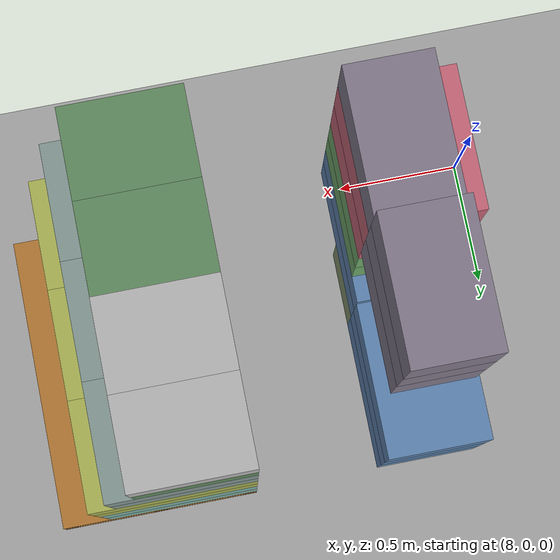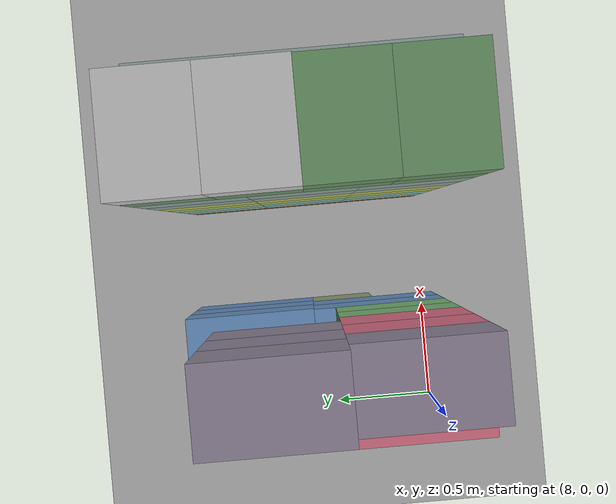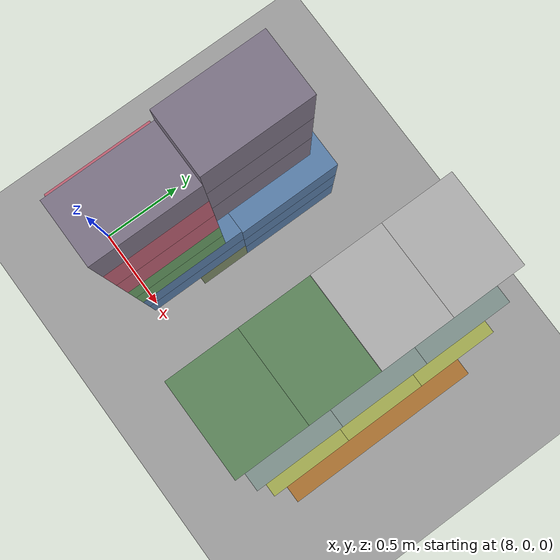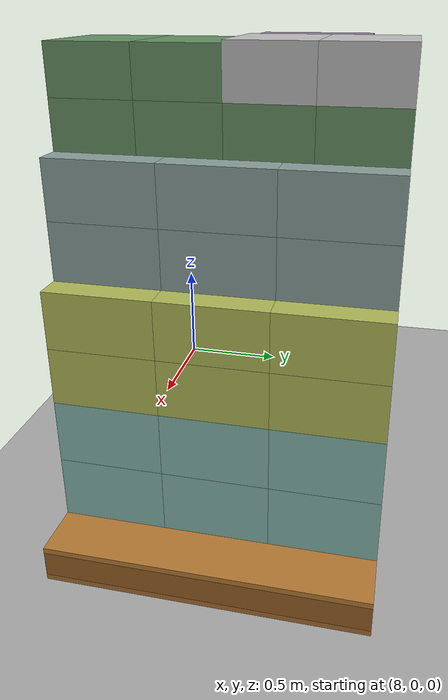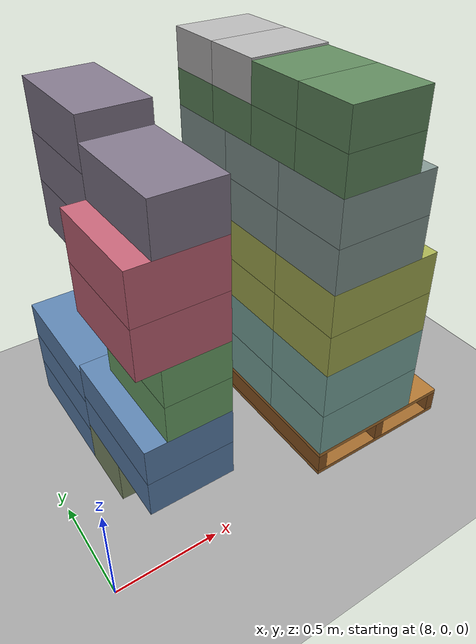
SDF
<sdf version="1.10">
 <world name="pallet_towers">
  <model name="ground_plane">
   <static>true</static>
   <link name="link">
    <collision name="collision">
     <geometry><plane><normal>0 0 1</normal><size>30 30</size></plane></geometry>
     <surface>
      <friction><ode><mu>0.55</mu><mu2>0.55</mu2></ode></friction>
      <bounce><restitution_coefficient>0</restitution_coefficient><threshold>100000</threshold></bounce>
      <contact><ode><kp>1000000</kp><kd>100</kd><max_vel>1</max_vel><min_depth>0.0005</min_depth></ode></contact>
     </surface>
    </collision>
    <visual name="visual">
     <geometry><plane><normal>0 0 1</normal><size>30 30</size></plane></geometry>
     <material><ambient>0.65 0.65 0.65 1</ambient><diffuse>0.65 0.65 0.65 1</diffuse></material>
    </visual>
   </link>
  </model>
  <model name="box_p07_0004_FRZVEG_005_FRZVEG">
   <static>false</static>
   <pose>8.4 0.45 0.256 0 0 0</pose>
   <link name="body">
    <inertial>
     <mass>7.5</mass>
     <inertia><ixx>0.0865</ixx><ixy>0</ixy><ixz>0</ixz><iyy>0.13025</iyy><iyz>0</iyz><izz>0.15625</izz></inertia>
    </inertial>
    <collision name="collision">
     <geometry><box><size>0.4 0.3 0.22</size></box></geometry>
     <surface>
      <friction><ode><mu>0.55</mu><mu2>0.55</mu2></ode></friction>
      <bounce><restitution_coefficient>0</restitution_coefficient><threshold>100000</threshold></bounce>
      <contact><ode><kp>1000000</kp><kd>100</kd><max_vel>1</max_vel><min_depth>0.0005</min_depth></ode></contact>
     </surface>
    </collision>
    <visual name="visual">
     <geometry><box><size>0.4 0.3 0.22</size></box></geometry>
     <material>
      <ambient>0.525490196 0.584313725 0.431372549 1</ambient>
      <diffuse>0.525490196 0.584313725 0.431372549 1</diffuse>
      <specular>0.05 0.05 0.05 1</specular>
     </material>
    </visual>
   </link>
  </model>
  <model name="box_p07_0006_PIZZA_001_PIZZA">
   <static>false</static>
   <pose>8.4 0.9 0.236 0 0 0</pose>
   <link name="body">
    <inertial>
     <mass>6</mass>
     <inertia><ixx>0.1962</ixx><ixy>0</ixy><ixz>0</ixz><iyy>0.0962</iyy><iyz>0</iyz><izz>0.26</izz></inertia>
    </inertial>
    <collision name="collision">
     <geometry><box><size>0.4 0.6 0.18</size></box></geometry>
     <surface>
      <friction><ode><mu>0.55</mu><mu2>0.55</mu2></ode></friction>
      <bounce><restitution_coefficient>0</restitution_coefficient><threshold>100000</threshold></bounce>
      <contact><ode><kp>1000000</kp><kd>100</kd><max_vel>1</max_vel><min_depth>0.0005</min_depth></ode></contact>
     </surface>
    </collision>
    <visual name="visual">
     <geometry><box><size>0.4 0.6 0.18</size></box></geometry>
     <material>
      <ambient>0.37254902 0.525490196 0.701960784 1</ambient>
      <diffuse>0.37254902 0.525490196 0.701960784 1</diffuse>
      <specular>0.05 0.05 0.05 1</specular>
     </material>
    </visual>
   </link>
  </model>
  <model name="box_p07_0007_PIZZA_002_PIZZA">
   <static>false</static>
   <pose>8.4 0.9 0.416 0 0 0</pose>
   <link name="body">
    <inertial>
     <mass>6</mass>
     <inertia><ixx>0.1962</ixx><ixy>0</ixy><ixz>0</ixz><iyy>0.0962</iyy><iyz>0</iyz><izz>0.26</izz></inertia>
    </inertial>
    <collision name="collision">
     <geometry><box><size>0.4 0.6 0.18</size></box></geometry>
     <surface>
      <friction><ode><mu>0.55</mu><mu2>0.55</mu2></ode></friction>
      <bounce><restitution_coefficient>0</restitution_coefficient><threshold>100000</threshold></bounce>
      <contact><ode><kp>1000000</kp><kd>100</kd><max_vel>1</max_vel><min_depth>0.0005</min_depth></ode></contact>
     </surface>
    </collision>
    <visual name="visual">
     <geometry><box><size>0.4 0.6 0.18</size></box></geometry>
     <material>
      <ambient>0.37254902 0.525490196 0.701960784 1</ambient>
      <diffuse>0.37254902 0.525490196 0.701960784 1</diffuse>
      <specular>0.05 0.05 0.05 1</specular>
     </material>
    </visual>
   </link>
  </model>
  <model name="box_p07_0008_PIZZA_003_PIZZA">
   <static>false</static>
   <pose>8.4 0.3 0.456 0 0 0</pose>
   <link name="body">
    <inertial>
     <mass>6</mass>
     <inertia><ixx>0.1962</ixx><ixy>0</ixy><ixz>0</ixz><iyy>0.0962</iyy><iyz>0</iyz><izz>0.26</izz></inertia>
    </inertial>
    <collision name="collision">
     <geometry><box><size>0.4 0.6 0.18</size></box></geometry>
     <surface>
      <friction><ode><mu>0.55</mu><mu2>0.55</mu2></ode></friction>
      <bounce><restitution_coefficient>0</restitution_coefficient><threshold>100000</threshold></bounce>
      <contact><ode><kp>1000000</kp><kd>100</kd><max_vel>1</max_vel><min_depth>0.0005</min_depth></ode></contact>
     </surface>
    </collision>
    <visual name="visual">
     <geometry><box><size>0.4 0.6 0.18</size></box></geometry>
     <material>
      <ambient>0.37254902 0.525490196 0.701960784 1</ambient>
      <diffuse>0.37254902 0.525490196 0.701960784 1</diffuse>
      <specular>0.05 0.05 0.05 1</specular>
     </material>
    </visual>
   </link>
  </model>
  <model name="box_p07_0009_PIZZA_004_PIZZA">
   <static>false</static>
   <pose>8.4 0.9 0.596 0 0 0</pose>
   <link name="body">
    <inertial>
     <mass>6</mass>
     <inertia><ixx>0.1962</ixx><ixy>0</ixy><ixz>0</ixz><iyy>0.0962</iyy><iyz>0</iyz><izz>0.26</izz></inertia>
    </inertial>
    <collision name="collision">
     <geometry><box><size>0.4 0.6 0.18</size></box></geometry>
     <surface>
      <friction><ode><mu>0.55</mu><mu2>0.55</mu2></ode></friction>
      <bounce><restitution_coefficient>0</restitution_coefficient><threshold>100000</threshold></bounce>
      <contact><ode><kp>1000000</kp><kd>100</kd><max_vel>1</max_vel><min_depth>0.0005</min_depth></ode></contact>
     </surface>
    </collision>
    <visual name="visual">
     <geometry><box><size>0.4 0.6 0.18</size></box></geometry>
     <material>
      <ambient>0.37254902 0.525490196 0.701960784 1</ambient>
      <diffuse>0.37254902 0.525490196 0.701960784 1</diffuse>
      <specular>0.05 0.05 0.05 1</specular>
     </material>
    </visual>
   </link>
  </model>
  <model name="box_p07_0011_PIZZA_006_PIZZA">
   <static>false</static>
   <pose>8.4 0.3 0.636 0 0 0</pose>
   <link name="body">
    <inertial>
     <mass>6</mass>
     <inertia><ixx>0.1962</ixx><ixy>0</ixy><ixz>0</ixz><iyy>0.0962</iyy><iyz>0</iyz><izz>0.26</izz></inertia>
    </inertial>
    <collision name="collision">
     <geometry><box><size>0.4 0.6 0.18</size></box></geometry>
     <surface>
      <friction><ode><mu>0.55</mu><mu2>0.55</mu2></ode></friction>
      <bounce><restitution_coefficient>0</restitution_coefficient><threshold>100000</threshold></bounce>
      <contact><ode><kp>1000000</kp><kd>100</kd><max_vel>1</max_vel><min_depth>0.0005</min_depth></ode></contact>
     </surface>
    </collision>
    <visual name="visual">
     <geometry><box><size>0.4 0.6 0.18</size></box></geometry>
     <material>
      <ambient>0.37254902 0.525490196 0.701960784 1</ambient>
      <diffuse>0.37254902 0.525490196 0.701960784 1</diffuse>
      <specular>0.05 0.05 0.05 1</specular>
     </material>
    </visual>
   </link>
  </model>
  <model name="box_p07_0021_CHICKEN_004_CHICKEN">
   <static>false</static>
   <pose>8.45 0.25 0.816 0 0 0</pose>
   <link name="body">
    <inertial>
     <mass>10</mass>
     <inertia>
      <ixx>0.235333333</ixx>
      <ixy>0</ixy>
      <ixz>0</ixz>
      <iyy>0.102</iyy>
      <iyz>0</iyz>
      <izz>0.283333333</izz>
     </inertia>
    </inertial>
    <collision name="collision">
     <geometry><box><size>0.3 0.5 0.18</size></box></geometry>
     <surface>
      <friction><ode><mu>0.55</mu><mu2>0.55</mu2></ode></friction>
      <bounce><restitution_coefficient>0</restitution_coefficient><threshold>100000</threshold></bounce>
      <contact><ode><kp>1000000</kp><kd>100</kd><max_vel>1</max_vel><min_depth>0.0005</min_depth></ode></contact>
     </surface>
    </collision>
    <visual name="visual">
     <geometry><box><size>0.3 0.5 0.18</size></box></geometry>
     <material>
      <ambient>0.439215686 0.666666667 0.423529412 1</ambient>
      <diffuse>0.439215686 0.666666667 0.423529412 1</diffuse>
      <specular>0.05 0.05 0.05 1</specular>
     </material>
    </visual>
   </link>
  </model>
  <model name="box_p07_0023_CHICKEN_006_CHICKEN">
   <static>false</static>
   <pose>8.45 0.25 0.996 0 0 0</pose>
   <link name="body">
    <inertial>
     <mass>10</mass>
     <inertia>
      <ixx>0.235333333</ixx>
      <ixy>0</ixy>
      <ixz>0</ixz>
      <iyy>0.102</iyy>
      <iyz>0</iyz>
      <izz>0.283333333</izz>
     </inertia>
    </inertial>
    <collision name="collision">
     <geometry><box><size>0.3 0.5 0.18</size></box></geometry>
     <surface>
      <friction><ode><mu>0.55</mu><mu2>0.55</mu2></ode></friction>
      <bounce><restitution_coefficient>0</restitution_coefficient><threshold>100000</threshold></bounce>
      <contact><ode><kp>1000000</kp><kd>100</kd><max_vel>1</max_vel><min_depth>0.0005</min_depth></ode></contact>
     </surface>
    </collision>
    <visual name="visual">
     <geometry><box><size>0.3 0.5 0.18</size></box></geometry>
     <material>
      <ambient>0.439215686 0.666666667 0.423529412 1</ambient>
      <diffuse>0.439215686 0.666666667 0.423529412 1</diffuse>
      <specular>0.05 0.05 0.05 1</specular>
     </material>
    </visual>
   </link>
  </model>
  <model name="box_p07_0031_CARROT_002_CARROT">
   <static>false</static>
   <pose>8.4 0.25 1.201 0 0 0</pose>
   <link name="body">
    <inertial>
     <mass>12</mass>
     <inertia><ixx>0.3029</ixx><ixy>0</ixy><ixz>0</ixz><iyy>0.2129</iyy><iyz>0</iyz><izz>0.41</izz></inertia>
    </inertial>
    <collision name="collision">
     <geometry><box><size>0.4 0.5 0.23</size></box></geometry>
     <surface>
      <friction><ode><mu>0.55</mu><mu2>0.55</mu2></ode></friction>
      <bounce><restitution_coefficient>0</restitution_coefficient><threshold>100000</threshold></bounce>
      <contact><ode><kp>1000000</kp><kd>100</kd><max_vel>1</max_vel><min_depth>0.0005</min_depth></ode></contact>
     </surface>
    </collision>
    <visual name="visual">
     <geometry><box><size>0.4 0.5 0.23</size></box></geometry>
     <material>
      <ambient>0.784313725 0.4 0.474509804 1</ambient>
      <diffuse>0.784313725 0.4 0.474509804 1</diffuse>
      <specular>0.05 0.05 0.05 1</specular>
     </material>
    </visual>
   </link>
  </model>
  <model name="box_p07_0033_CARROT_004_CARROT">
   <static>false</static>
   <pose>8.4 0.25 1.431 0 0 0</pose>
   <link name="body">
    <inertial>
     <mass>12</mass>
     <inertia><ixx>0.3029</ixx><ixy>0</ixy><ixz>0</ixz><iyy>0.2129</iyy><iyz>0</iyz><izz>0.41</izz></inertia>
    </inertial>
    <collision name="collision">
     <geometry><box><size>0.4 0.5 0.23</size></box></geometry>
     <surface>
      <friction><ode><mu>0.55</mu><mu2>0.55</mu2></ode></friction>
      <bounce><restitution_coefficient>0</restitution_coefficient><threshold>100000</threshold></bounce>
      <contact><ode><kp>1000000</kp><kd>100</kd><max_vel>1</max_vel><min_depth>0.0005</min_depth></ode></contact>
     </surface>
    </collision>
    <visual name="visual">
     <geometry><box><size>0.4 0.5 0.23</size></box></geometry>
     <material>
      <ambient>0.784313725 0.4 0.474509804 1</ambient>
      <diffuse>0.784313725 0.4 0.474509804 1</diffuse>
      <specular>0.05 0.05 0.05 1</specular>
     </material>
    </visual>
   </link>
  </model>
  <model name="box_p07_0036_CUCUMBER_001_CUCUMBER">
   <static>false</static>
   <pose>8.45 0.75 1.316 0 0 0</pose>
   <link name="body">
    <inertial>
     <mass>8</mass>
     <inertia>
      <ixx>0.198933333</ixx>
      <ixy>0</ixy>
      <ixz>0</ixz>
      <iyy>0.0922666667</iyy>
      <iyz>0</iyz>
      <izz>0.226666667</izz>
     </inertia>
    </inertial>
    <collision name="collision">
     <geometry><box><size>0.3 0.5 0.22</size></box></geometry>
     <surface>
      <friction><ode><mu>0.55</mu><mu2>0.55</mu2></ode></friction>
      <bounce><restitution_coefficient>0</restitution_coefficient><threshold>100000</threshold></bounce>
      <contact><ode><kp>1000000</kp><kd>100</kd><max_vel>1</max_vel><min_depth>0.0005</min_depth></ode></contact>
     </surface>
    </collision>
    <visual name="visual">
     <geometry><box><size>0.3 0.5 0.22</size></box></geometry>
     <material>
      <ambient>0.517647059 0.478431373 0.552941176 1</ambient>
      <diffuse>0.517647059 0.478431373 0.552941176 1</diffuse>
      <specular>0.05 0.05 0.05 1</specular>
     </material>
    </visual>
   </link>
  </model>
  <model name="box_p07_0037_CUCUMBER_002_CUCUMBER">
   <static>false</static>
   <pose>8.45 0.75 1.536 0 0 0</pose>
   <link name="body">
    <inertial>
     <mass>8</mass>
     <inertia>
      <ixx>0.198933333</ixx>
      <ixy>0</ixy>
      <ixz>0</ixz>
      <iyy>0.0922666667</iyy>
      <iyz>0</iyz>
      <izz>0.226666667</izz>
     </inertia>
    </inertial>
    <collision name="collision">
     <geometry><box><size>0.3 0.5 0.22</size></box></geometry>
     <surface>
      <friction><ode><mu>0.55</mu><mu2>0.55</mu2></ode></friction>
      <bounce><restitution_coefficient>0</restitution_coefficient><threshold>100000</threshold></bounce>
      <contact><ode><kp>1000000</kp><kd>100</kd><max_vel>1</max_vel><min_depth>0.0005</min_depth></ode></contact>
     </surface>
    </collision>
    <visual name="visual">
     <geometry><box><size>0.3 0.5 0.22</size></box></geometry>
     <material>
      <ambient>0.517647059 0.478431373 0.552941176 1</ambient>
      <diffuse>0.517647059 0.478431373 0.552941176 1</diffuse>
      <specular>0.05 0.05 0.05 1</specular>
     </material>
    </visual>
   </link>
  </model>
  <model name="box_p07_0038_CUCUMBER_003_CUCUMBER">
   <static>false</static>
   <pose>8.45 0.25 1.656 0 0 0</pose>
   <link name="body">
    <inertial>
     <mass>8</mass>
     <inertia>
      <ixx>0.198933333</ixx>
      <ixy>0</ixy>
      <ixz>0</ixz>
      <iyy>0.0922666667</iyy>
      <iyz>0</iyz>
      <izz>0.226666667</izz>
     </inertia>
    </inertial>
    <collision name="collision">
     <geometry><box><size>0.3 0.5 0.22</size></box></geometry>
     <surface>
      <friction><ode><mu>0.55</mu><mu2>0.55</mu2></ode></friction>
      <bounce><restitution_coefficient>0</restitution_coefficient><threshold>100000</threshold></bounce>
      <contact><ode><kp>1000000</kp><kd>100</kd><max_vel>1</max_vel><min_depth>0.0005</min_depth></ode></contact>
     </surface>
    </collision>
    <visual name="visual">
     <geometry><box><size>0.3 0.5 0.22</size></box></geometry>
     <material>
      <ambient>0.517647059 0.478431373 0.552941176 1</ambient>
      <diffuse>0.517647059 0.478431373 0.552941176 1</diffuse>
      <specular>0.05 0.05 0.05 1</specular>
     </material>
    </visual>
   </link>
  </model>
  <model name="box_p07_0040_CUCUMBER_005_CUCUMBER">
   <static>false</static>
   <pose>8.45 0.75 1.756 0 0 0</pose>
   <link name="body">
    <inertial>
     <mass>8</mass>
     <inertia>
      <ixx>0.198933333</ixx>
      <ixy>0</ixy>
      <ixz>0</ixz>
      <iyy>0.0922666667</iyy>
      <iyz>0</iyz>
      <izz>0.226666667</izz>
     </inertia>
    </inertial>
    <collision name="collision">
     <geometry><box><size>0.3 0.5 0.22</size></box></geometry>
     <surface>
      <friction><ode><mu>0.55</mu><mu2>0.55</mu2></ode></friction>
      <bounce><restitution_coefficient>0</restitution_coefficient><threshold>100000</threshold></bounce>
      <contact><ode><kp>1000000</kp><kd>100</kd><max_vel>1</max_vel><min_depth>0.0005</min_depth></ode></contact>
     </surface>
    </collision>
    <visual name="visual">
     <geometry><box><size>0.3 0.5 0.22</size></box></geometry>
     <material>
      <ambient>0.517647059 0.478431373 0.552941176 1</ambient>
      <diffuse>0.517647059 0.478431373 0.552941176 1</diffuse>
      <specular>0.05 0.05 0.05 1</specular>
     </material>
    </visual>
   </link>
  </model>
  <model name="pallet_08_P08">
   <static>false</static>
   <pose>9.5 0.6 0.002 0 0 0</pose>
   <allow_auto_disable>false</allow_auto_disable>
   <link name="body">
    <inertial>
     <pose>0 0 0.072 0 0 0</pose>
     <mass>25</mass>
     <inertia>
      <ixx>3.07216082</ixx>
      <ixy>0</ixy>
      <ixz>0</ixz>
      <iyy>1.70896776</iyy>
      <iyz>0</iyz>
      <izz>4.63680694</izz>
     </inertia>
    </inertial>
    <collision name="bottom_deck_collision">
     <pose>0 0 0.011 0 0 0</pose>
     <geometry><box><size>0.8 1.2 0.022</size></box></geometry>
     <surface>
      <friction><ode><mu>0.55</mu><mu2>0.55</mu2></ode></friction>
      <bounce><restitution_coefficient>0</restitution_coefficient><threshold>100000</threshold></bounce>
      <contact><ode><kp>1000000</kp><kd>100</kd><max_vel>1</max_vel><min_depth>0.0005</min_depth></ode></contact>
     </surface>
    </collision>
    <visual name="bottom_deck_visual">
     <pose>0 0 0.011 0 0 0</pose>
     <geometry><box><size>0.8 1.2 0.022</size></box></geometry>
     <material>
      <ambient>0.46 0.28 0.10 1</ambient>
      <diffuse>0.64 0.42 0.18 1</diffuse>
      <specular>0.03 0.03 0.03 1</specular>
     </material>
    </visual>
    <collision name="left_stringer_collision">
     <pose>-0.375 0 0.072 0 0 0</pose>
     <geometry><box><size>0.05 1.2 0.1</size></box></geometry>
     <surface>
      <friction><ode><mu>0.55</mu><mu2>0.55</mu2></ode></friction>
      <bounce><restitution_coefficient>0</restitution_coefficient><threshold>100000</threshold></bounce>
      <contact><ode><kp>1000000</kp><kd>100</kd><max_vel>1</max_vel><min_depth>0.0005</min_depth></ode></contact>
     </surface>
    </collision>
    <visual name="left_stringer_visual">
     <pose>-0.375 0 0.072 0 0 0</pose>
     <geometry><box><size>0.05 1.2 0.1</size></box></geometry>
     <material>
      <ambient>0.42 0.25 0.09 1</ambient>
      <diffuse>0.58 0.36 0.14 1</diffuse>
      <specular>0.03 0.03 0.03 1</specular>
     </material>
    </visual>
    <collision name="centre_stringer_collision">
     <pose>0 0 0.072 0 0 0</pose>
     <geometry><box><size>0.05 1.2 0.1</size></box></geometry>
     <surface>
      <friction><ode><mu>0.55</mu><mu2>0.55</mu2></ode></friction>
      <bounce><restitution_coefficient>0</restitution_coefficient><threshold>100000</threshold></bounce>
      <contact><ode><kp>1000000</kp><kd>100</kd><max_vel>1</max_vel><min_depth>0.0005</min_depth></ode></contact>
     </surface>
    </collision>
    <visual name="centre_stringer_visual">
     <pose>0 0 0.072 0 0 0</pose>
     <geometry><box><size>0.05 1.2 0.1</size></box></geometry>
     <material>
      <ambient>0.42 0.25 0.09 1</ambient>
      <diffuse>0.58 0.36 0.14 1</diffuse>
      <specular>0.03 0.03 0.03 1</specular>
     </material>
    </visual>
    <collision name="right_stringer_collision">
     <pose>0.375 0 0.072 0 0 0</pose>
     <geometry><box><size>0.05 1.2 0.1</size></box></geometry>
     <surface>
      <friction><ode><mu>0.55</mu><mu2>0.55</mu2></ode></friction>
      <bounce><restitution_coefficient>0</restitution_coefficient><threshold>100000</threshold></bounce>
      <contact><ode><kp>1000000</kp><kd>100</kd><max_vel>1</max_vel><min_depth>0.0005</min_depth></ode></contact>
     </surface>
    </collision>
    <visual name="right_stringer_visual">
     <pose>0.375 0 0.072 0 0 0</pose>
     <geometry><box><size>0.05 1.2 0.1</size></box></geometry>
     <material>
      <ambient>0.42 0.25 0.09 1</ambient>
      <diffuse>0.58 0.36 0.14 1</diffuse>
      <specular>0.03 0.03 0.03 1</specular>
     </material>
    </visual>
    <collision name="top_deck_collision">
     <pose>0 0 0.133 0 0 0</pose>
     <geometry><box><size>0.8 1.2 0.022</size></box></geometry>
     <surface>
      <friction><ode><mu>0.55</mu><mu2>0.55</mu2></ode></friction>
      <bounce><restitution_coefficient>0</restitution_coefficient><threshold>100000</threshold></bounce>
      <contact><ode><kp>1000000</kp><kd>100</kd><max_vel>1</max_vel><min_depth>0.0005</min_depth></ode></contact>
     </surface>
    </collision>
    <visual name="top_deck_visual">
     <pose>0 0 0.133 0 0 0</pose>
     <geometry><box><size>0.8 1.2 0.022</size></box></geometry>
     <material>
      <ambient>0.50 0.31 0.11 1</ambient>
      <diffuse>0.70 0.47 0.20 1</diffuse>
      <specular>0.03 0.03 0.03 1</specular>
     </material>
    </visual>
   </link>
  </model>
  <model name="box_p08_0001_LETTUCE_001_LETTUCE">
   <static>false</static>
   <pose>9.4 0.2 0.271 0 0 0</pose>
   <link name="body">
    <inertial>
     <mass>5</mass>
     <inertia>
      <ixx>0.0927083333</ixx>
      <ixy>0</ixy>
      <ixz>0</ixz>
      <iyy>0.176041667</iyy>
      <iyz>0</iyz>
      <izz>0.216666667</izz>
     </inertia>
    </inertial>
    <collision name="collision">
     <geometry><box><size>0.6 0.4 0.25</size></box></geometry>
     <surface>
      <friction><ode><mu>0.55</mu><mu2>0.55</mu2></ode></friction>
      <bounce><restitution_coefficient>0</restitution_coefficient><threshold>100000</threshold></bounce>
      <contact><ode><kp>1000000</kp><kd>100</kd><max_vel>1</max_vel><min_depth>0.0005</min_depth></ode></contact>
     </surface>
    </collision>
    <visual name="visual">
     <geometry><box><size>0.6 0.4 0.25</size></box></geometry>
     <material>
      <ambient>0.498039216 0.690196078 0.650980392 1</ambient>
      <diffuse>0.498039216 0.690196078 0.650980392 1</diffuse>
      <specular>0.05 0.05 0.05 1</specular>
     </material>
    </visual>
   </link>
  </model>
  <model name="box_p08_0002_LETTUCE_002_LETTUCE">
   <static>false</static>
   <pose>9.4 0.6 0.271 0 0 0</pose>
   <link name="body">
    <inertial>
     <mass>5</mass>
     <inertia>
      <ixx>0.0927083333</ixx>
      <ixy>0</ixy>
      <ixz>0</ixz>
      <iyy>0.176041667</iyy>
      <iyz>0</iyz>
      <izz>0.216666667</izz>
     </inertia>
    </inertial>
    <collision name="collision">
     <geometry><box><size>0.6 0.4 0.25</size></box></geometry>
     <surface>
      <friction><ode><mu>0.55</mu><mu2>0.55</mu2></ode></friction>
      <bounce><restitution_coefficient>0</restitution_coefficient><threshold>100000</threshold></bounce>
      <contact><ode><kp>1000000</kp><kd>100</kd><max_vel>1</max_vel><min_depth>0.0005</min_depth></ode></contact>
     </surface>
    </collision>
    <visual name="visual">
     <geometry><box><size>0.6 0.4 0.25</size></box></geometry>
     <material>
      <ambient>0.498039216 0.690196078 0.650980392 1</ambient>
      <diffuse>0.498039216 0.690196078 0.650980392 1</diffuse>
      <specular>0.05 0.05 0.05 1</specular>
     </material>
    </visual>
   </link>
  </model>
  <model name="box_p08_0003_LETTUCE_003_LETTUCE">
   <static>false</static>
   <pose>9.4 1 0.271 0 0 0</pose>
   <link name="body">
    <inertial>
     <mass>5</mass>
     <inertia>
      <ixx>0.0927083333</ixx>
      <ixy>0</ixy>
      <ixz>0</ixz>
      <iyy>0.176041667</iyy>
      <iyz>0</iyz>
      <izz>0.216666667</izz>
     </inertia>
    </inertial>
    <collision name="collision">
     <geometry><box><size>0.6 0.4 0.25</size></box></geometry>
     <surface>
      <friction><ode><mu>0.55</mu><mu2>0.55</mu2></ode></friction>
      <bounce><restitution_coefficient>0</restitution_coefficient><threshold>100000</threshold></bounce>
      <contact><ode><kp>1000000</kp><kd>100</kd><max_vel>1</max_vel><min_depth>0.0005</min_depth></ode></contact>
     </surface>
    </collision>
    <visual name="visual">
     <geometry><box><size>0.6 0.4 0.25</size></box></geometry>
     <material>
      <ambient>0.498039216 0.690196078 0.650980392 1</ambient>
      <diffuse>0.498039216 0.690196078 0.650980392 1</diffuse>
      <specular>0.05 0.05 0.05 1</specular>
     </material>
    </visual>
   </link>
  </model>
  <model name="box_p08_0004_LETTUCE_004_LETTUCE">
   <static>false</static>
   <pose>9.4 0.2 0.521 0 0 0</pose>
   <link name="body">
    <inertial>
     <mass>5</mass>
     <inertia>
      <ixx>0.0927083333</ixx>
      <ixy>0</ixy>
      <ixz>0</ixz>
      <iyy>0.176041667</iyy>
      <iyz>0</iyz>
      <izz>0.216666667</izz>
     </inertia>
    </inertial>
    <collision name="collision">
     <geometry><box><size>0.6 0.4 0.25</size></box></geometry>
     <surface>
      <friction><ode><mu>0.55</mu><mu2>0.55</mu2></ode></friction>
      <bounce><restitution_coefficient>0</restitution_coefficient><threshold>100000</threshold></bounce>
      <contact><ode><kp>1000000</kp><kd>100</kd><max_vel>1</max_vel><min_depth>0.0005</min_depth></ode></contact>
     </surface>
    </collision>
    <visual name="visual">
     <geometry><box><size>0.6 0.4 0.25</size></box></geometry>
     <material>
      <ambient>0.498039216 0.690196078 0.650980392 1</ambient>
      <diffuse>0.498039216 0.690196078 0.650980392 1</diffuse>
      <specular>0.05 0.05 0.05 1</specular>
     </material>
    </visual>
   </link>
  </model>
  <model name="box_p08_0005_LETTUCE_005_LETTUCE">
   <static>false</static>
   <pose>9.4 0.6 0.521 0 0 0</pose>
   <link name="body">
    <inertial>
     <mass>5</mass>
     <inertia>
      <ixx>0.0927083333</ixx>
      <ixy>0</ixy>
      <ixz>0</ixz>
      <iyy>0.176041667</iyy>
      <iyz>0</iyz>
      <izz>0.216666667</izz>
     </inertia>
    </inertial>
    <collision name="collision">
     <geometry><box><size>0.6 0.4 0.25</size></box></geometry>
     <surface>
      <friction><ode><mu>0.55</mu><mu2>0.55</mu2></ode></friction>
      <bounce><restitution_coefficient>0</restitution_coefficient><threshold>100000</threshold></bounce>
      <contact><ode><kp>1000000</kp><kd>100</kd><max_vel>1</max_vel><min_depth>0.0005</min_depth></ode></contact>
     </surface>
    </collision>
    <visual name="visual">
     <geometry><box><size>0.6 0.4 0.25</size></box></geometry>
     <material>
      <ambient>0.498039216 0.690196078 0.650980392 1</ambient>
      <diffuse>0.498039216 0.690196078 0.650980392 1</diffuse>
      <specular>0.05 0.05 0.05 1</specular>
     </material>
    </visual>
   </link>
  </model>
  <model name="box_p08_0006_LETTUCE_006_LETTUCE">
   <static>false</static>
   <pose>9.4 1 0.521 0 0 0</pose>
   <link name="body">
    <inertial>
     <mass>5</mass>
     <inertia>
      <ixx>0.0927083333</ixx>
      <ixy>0</ixy>
      <ixz>0</ixz>
      <iyy>0.176041667</iyy>
      <iyz>0</iyz>
      <izz>0.216666667</izz>
     </inertia>
    </inertial>
    <collision name="collision">
     <geometry><box><size>0.6 0.4 0.25</size></box></geometry>
     <surface>
      <friction><ode><mu>0.55</mu><mu2>0.55</mu2></ode></friction>
      <bounce><restitution_coefficient>0</restitution_coefficient><threshold>100000</threshold></bounce>
      <contact><ode><kp>1000000</kp><kd>100</kd><max_vel>1</max_vel><min_depth>0.0005</min_depth></ode></contact>
     </surface>
    </collision>
    <visual name="visual">
     <geometry><box><size>0.6 0.4 0.25</size></box></geometry>
     <material>
      <ambient>0.498039216 0.690196078 0.650980392 1</ambient>
      <diffuse>0.498039216 0.690196078 0.650980392 1</diffuse>
      <specular>0.05 0.05 0.05 1</specular>
     </material>
    </visual>
   </link>
  </model>
  <model name="box_p08_0007_ORANGE_001_ORANGE">
   <static>false</static>
   <pose>9.4 0.2 0.756 0 0 0</pose>
   <link name="body">
    <inertial>
     <mass>13</mass>
     <inertia>
      <ixx>0.225766667</ixx>
      <ixy>0</ixy>
      <ixz>0</ixz>
      <iyy>0.442433333</iyy>
      <iyz>0</iyz>
      <izz>0.563333333</izz>
     </inertia>
    </inertial>
    <collision name="collision">
     <geometry><box><size>0.6 0.4 0.22</size></box></geometry>
     <surface>
      <friction><ode><mu>0.55</mu><mu2>0.55</mu2></ode></friction>
      <bounce><restitution_coefficient>0</restitution_coefficient><threshold>100000</threshold></bounce>
      <contact><ode><kp>1000000</kp><kd>100</kd><max_vel>1</max_vel><min_depth>0.0005</min_depth></ode></contact>
     </surface>
    </collision>
    <visual name="visual">
     <geometry><box><size>0.6 0.4 0.22</size></box></geometry>
     <material>
      <ambient>0.670588235 0.705882353 0.329411765 1</ambient>
      <diffuse>0.670588235 0.705882353 0.329411765 1</diffuse>
      <specular>0.05 0.05 0.05 1</specular>
     </material>
    </visual>
   </link>
  </model>
  <model name="box_p08_0008_ORANGE_002_ORANGE">
   <static>false</static>
   <pose>9.4 0.6 0.756 0 0 0</pose>
   <link name="body">
    <inertial>
     <mass>13</mass>
     <inertia>
      <ixx>0.225766667</ixx>
      <ixy>0</ixy>
      <ixz>0</ixz>
      <iyy>0.442433333</iyy>
      <iyz>0</iyz>
      <izz>0.563333333</izz>
     </inertia>
    </inertial>
    <collision name="collision">
     <geometry><box><size>0.6 0.4 0.22</size></box></geometry>
     <surface>
      <friction><ode><mu>0.55</mu><mu2>0.55</mu2></ode></friction>
      <bounce><restitution_coefficient>0</restitution_coefficient><threshold>100000</threshold></bounce>
      <contact><ode><kp>1000000</kp><kd>100</kd><max_vel>1</max_vel><min_depth>0.0005</min_depth></ode></contact>
     </surface>
    </collision>
    <visual name="visual">
     <geometry><box><size>0.6 0.4 0.22</size></box></geometry>
     <material>
      <ambient>0.670588235 0.705882353 0.329411765 1</ambient>
      <diffuse>0.670588235 0.705882353 0.329411765 1</diffuse>
      <specular>0.05 0.05 0.05 1</specular>
     </material>
    </visual>
   </link>
  </model>
  <model name="box_p08_0009_ORANGE_003_ORANGE">
   <static>false</static>
   <pose>9.4 1 0.756 0 0 0</pose>
   <link name="body">
    <inertial>
     <mass>13</mass>
     <inertia>
      <ixx>0.225766667</ixx>
      <ixy>0</ixy>
      <ixz>0</ixz>
      <iyy>0.442433333</iyy>
      <iyz>0</iyz>
      <izz>0.563333333</izz>
     </inertia>
    </inertial>
    <collision name="collision">
     <geometry><box><size>0.6 0.4 0.22</size></box></geometry>
     <surface>
      <friction><ode><mu>0.55</mu><mu2>0.55</mu2></ode></friction>
      <bounce><restitution_coefficient>0</restitution_coefficient><threshold>100000</threshold></bounce>
      <contact><ode><kp>1000000</kp><kd>100</kd><max_vel>1</max_vel><min_depth>0.0005</min_depth></ode></contact>
     </surface>
    </collision>
    <visual name="visual">
     <geometry><box><size>0.6 0.4 0.22</size></box></geometry>
     <material>
      <ambient>0.670588235 0.705882353 0.329411765 1</ambient>
      <diffuse>0.670588235 0.705882353 0.329411765 1</diffuse>
      <specular>0.05 0.05 0.05 1</specular>
     </material>
    </visual>
   </link>
  </model>
  <model name="box_p08_0010_ORANGE_004_ORANGE">
   <static>false</static>
   <pose>9.4 0.2 0.976 0 0 0</pose>
   <link name="body">
    <inertial>
     <mass>13</mass>
     <inertia>
      <ixx>0.225766667</ixx>
      <ixy>0</ixy>
      <ixz>0</ixz>
      <iyy>0.442433333</iyy>
      <iyz>0</iyz>
      <izz>0.563333333</izz>
     </inertia>
    </inertial>
    <collision name="collision">
     <geometry><box><size>0.6 0.4 0.22</size></box></geometry>
     <surface>
      <friction><ode><mu>0.55</mu><mu2>0.55</mu2></ode></friction>
      <bounce><restitution_coefficient>0</restitution_coefficient><threshold>100000</threshold></bounce>
      <contact><ode><kp>1000000</kp><kd>100</kd><max_vel>1</max_vel><min_depth>0.0005</min_depth></ode></contact>
     </surface>
    </collision>
    <visual name="visual">
     <geometry><box><size>0.6 0.4 0.22</size></box></geometry>
     <material>
      <ambient>0.670588235 0.705882353 0.329411765 1</ambient>
      <diffuse>0.670588235 0.705882353 0.329411765 1</diffuse>
      <specular>0.05 0.05 0.05 1</specular>
     </material>
    </visual>
   </link>
  </model>
  <model name="box_p08_0011_ORANGE_005_ORANGE">
   <static>false</static>
   <pose>9.4 0.6 0.976 0 0 0</pose>
   <link name="body">
    <inertial>
     <mass>13</mass>
     <inertia>
      <ixx>0.225766667</ixx>
      <ixy>0</ixy>
      <ixz>0</ixz>
      <iyy>0.442433333</iyy>
      <iyz>0</iyz>
      <izz>0.563333333</izz>
     </inertia>
    </inertial>
    <collision name="collision">
     <geometry><box><size>0.6 0.4 0.22</size></box></geometry>
     <surface>
      <friction><ode><mu>0.55</mu><mu2>0.55</mu2></ode></friction>
      <bounce><restitution_coefficient>0</restitution_coefficient><threshold>100000</threshold></bounce>
      <contact><ode><kp>1000000</kp><kd>100</kd><max_vel>1</max_vel><min_depth>0.0005</min_depth></ode></contact>
     </surface>
    </collision>
    <visual name="visual">
     <geometry><box><size>0.6 0.4 0.22</size></box></geometry>
     <material>
      <ambient>0.670588235 0.705882353 0.329411765 1</ambient>
      <diffuse>0.670588235 0.705882353 0.329411765 1</diffuse>
      <specular>0.05 0.05 0.05 1</specular>
     </material>
    </visual>
   </link>
  </model>
  <model name="box_p08_0012_ORANGE_006_ORANGE">
   <static>false</static>
   <pose>9.4 1 0.976 0 0 0</pose>
   <link name="body">
    <inertial>
     <mass>13</mass>
     <inertia>
      <ixx>0.225766667</ixx>
      <ixy>0</ixy>
      <ixz>0</ixz>
      <iyy>0.442433333</iyy>
      <iyz>0</iyz>
      <izz>0.563333333</izz>
     </inertia>
    </inertial>
    <collision name="collision">
     <geometry><box><size>0.6 0.4 0.22</size></box></geometry>
     <surface>
      <friction><ode><mu>0.55</mu><mu2>0.55</mu2></ode></friction>
      <bounce><restitution_coefficient>0</restitution_coefficient><threshold>100000</threshold></bounce>
      <contact><ode><kp>1000000</kp><kd>100</kd><max_vel>1</max_vel><min_depth>0.0005</min_depth></ode></contact>
     </surface>
    </collision>
    <visual name="visual">
     <geometry><box><size>0.6 0.4 0.22</size></box></geometry>
     <material>
      <ambient>0.670588235 0.705882353 0.329411765 1</ambient>
      <diffuse>0.670588235 0.705882353 0.329411765 1</diffuse>
      <specular>0.05 0.05 0.05 1</specular>
     </material>
    </visual>
   </link>
  </model>
  <model name="box_p08_0013_PEAR_001_PEAR">
   <static>false</static>
   <pose>9.35 0.2 1.196 0 0 0</pose>
   <link name="body">
    <inertial>
     <mass>11</mass>
     <inertia>
      <ixx>0.191033333</ixx>
      <ixy>0</ixy>
      <ixz>0</ixz>
      <iyy>0.273533333</iyy>
      <iyz>0</iyz>
      <izz>0.375833333</izz>
     </inertia>
    </inertial>
    <collision name="collision">
     <geometry><box><size>0.5 0.4 0.22</size></box></geometry>
     <surface>
      <friction><ode><mu>0.55</mu><mu2>0.55</mu2></ode></friction>
      <bounce><restitution_coefficient>0</restitution_coefficient><threshold>100000</threshold></bounce>
      <contact><ode><kp>1000000</kp><kd>100</kd><max_vel>1</max_vel><min_depth>0.0005</min_depth></ode></contact>
     </surface>
    </collision>
    <visual name="visual">
     <geometry><box><size>0.5 0.4 0.22</size></box></geometry>
     <material>
      <ambient>0.521568627 0.6 0.580392157 1</ambient>
      <diffuse>0.521568627 0.6 0.580392157 1</diffuse>
      <specular>0.05 0.05 0.05 1</specular>
     </material>
    </visual>
   </link>
  </model>
  <model name="box_p08_0014_PEAR_002_PEAR">
   <static>false</static>
   <pose>9.35 0.6 1.196 0 0 0</pose>
   <link name="body">
    <inertial>
     <mass>11</mass>
     <inertia>
      <ixx>0.191033333</ixx>
      <ixy>0</ixy>
      <ixz>0</ixz>
      <iyy>0.273533333</iyy>
      <iyz>0</iyz>
      <izz>0.375833333</izz>
     </inertia>
    </inertial>
    <collision name="collision">
     <geometry><box><size>0.5 0.4 0.22</size></box></geometry>
     <surface>
      <friction><ode><mu>0.55</mu><mu2>0.55</mu2></ode></friction>
      <bounce><restitution_coefficient>0</restitution_coefficient><threshold>100000</threshold></bounce>
      <contact><ode><kp>1000000</kp><kd>100</kd><max_vel>1</max_vel><min_depth>0.0005</min_depth></ode></contact>
     </surface>
    </collision>
    <visual name="visual">
     <geometry><box><size>0.5 0.4 0.22</size></box></geometry>
     <material>
      <ambient>0.521568627 0.6 0.580392157 1</ambient>
      <diffuse>0.521568627 0.6 0.580392157 1</diffuse>
      <specular>0.05 0.05 0.05 1</specular>
     </material>
    </visual>
   </link>
  </model>
  <model name="box_p08_0015_PEAR_003_PEAR">
   <static>false</static>
   <pose>9.35 1 1.196 0 0 0</pose>
   <link name="body">
    <inertial>
     <mass>11</mass>
     <inertia>
      <ixx>0.191033333</ixx>
      <ixy>0</ixy>
      <ixz>0</ixz>
      <iyy>0.273533333</iyy>
      <iyz>0</iyz>
      <izz>0.375833333</izz>
     </inertia>
    </inertial>
    <collision name="collision">
     <geometry><box><size>0.5 0.4 0.22</size></box></geometry>
     <surface>
      <friction><ode><mu>0.55</mu><mu2>0.55</mu2></ode></friction>
      <bounce><restitution_coefficient>0</restitution_coefficient><threshold>100000</threshold></bounce>
      <contact><ode><kp>1000000</kp><kd>100</kd><max_vel>1</max_vel><min_depth>0.0005</min_depth></ode></contact>
     </surface>
    </collision>
    <visual name="visual">
     <geometry><box><size>0.5 0.4 0.22</size></box></geometry>
     <material>
      <ambient>0.521568627 0.6 0.580392157 1</ambient>
      <diffuse>0.521568627 0.6 0.580392157 1</diffuse>
      <specular>0.05 0.05 0.05 1</specular>
     </material>
    </visual>
   </link>
  </model>
  <model name="box_p08_0016_PEAR_004_PEAR">
   <static>false</static>
   <pose>9.35 0.2 1.416 0 0 0</pose>
   <link name="body">
    <inertial>
     <mass>11</mass>
     <inertia>
      <ixx>0.191033333</ixx>
      <ixy>0</ixy>
      <ixz>0</ixz>
      <iyy>0.273533333</iyy>
      <iyz>0</iyz>
      <izz>0.375833333</izz>
     </inertia>
    </inertial>
    <collision name="collision">
     <geometry><box><size>0.5 0.4 0.22</size></box></geometry>
     <surface>
      <friction><ode><mu>0.55</mu><mu2>0.55</mu2></ode></friction>
      <bounce><restitution_coefficient>0</restitution_coefficient><threshold>100000</threshold></bounce>
      <contact><ode><kp>1000000</kp><kd>100</kd><max_vel>1</max_vel><min_depth>0.0005</min_depth></ode></contact>
     </surface>
    </collision>
    <visual name="visual">
     <geometry><box><size>0.5 0.4 0.22</size></box></geometry>
     <material>
      <ambient>0.521568627 0.6 0.580392157 1</ambient>
      <diffuse>0.521568627 0.6 0.580392157 1</diffuse>
      <specular>0.05 0.05 0.05 1</specular>
     </material>
    </visual>
   </link>
  </model>
  <model name="box_p08_0017_PEAR_005_PEAR">
   <static>false</static>
   <pose>9.35 0.6 1.416 0 0 0</pose>
   <link name="body">
    <inertial>
     <mass>11</mass>
     <inertia>
      <ixx>0.191033333</ixx>
      <ixy>0</ixy>
      <ixz>0</ixz>
      <iyy>0.273533333</iyy>
      <iyz>0</iyz>
      <izz>0.375833333</izz>
     </inertia>
    </inertial>
    <collision name="collision">
     <geometry><box><size>0.5 0.4 0.22</size></box></geometry>
     <surface>
      <friction><ode><mu>0.55</mu><mu2>0.55</mu2></ode></friction>
      <bounce><restitution_coefficient>0</restitution_coefficient><threshold>100000</threshold></bounce>
      <contact><ode><kp>1000000</kp><kd>100</kd><max_vel>1</max_vel><min_depth>0.0005</min_depth></ode></contact>
     </surface>
    </collision>
    <visual name="visual">
     <geometry><box><size>0.5 0.4 0.22</size></box></geometry>
     <material>
      <ambient>0.521568627 0.6 0.580392157 1</ambient>
      <diffuse>0.521568627 0.6 0.580392157 1</diffuse>
      <specular>0.05 0.05 0.05 1</specular>
     </material>
    </visual>
   </link>
  </model>
  <model name="box_p08_0018_PEAR_006_PEAR">
   <static>false</static>
   <pose>9.35 1 1.416 0 0 0</pose>
   <link name="body">
    <inertial>
     <mass>11</mass>
     <inertia>
      <ixx>0.191033333</ixx>
      <ixy>0</ixy>
      <ixz>0</ixz>
      <iyy>0.273533333</iyy>
      <iyz>0</iyz>
      <izz>0.375833333</izz>
     </inertia>
    </inertial>
    <collision name="collision">
     <geometry><box><size>0.5 0.4 0.22</size></box></geometry>
     <surface>
      <friction><ode><mu>0.55</mu><mu2>0.55</mu2></ode></friction>
      <bounce><restitution_coefficient>0</restitution_coefficient><threshold>100000</threshold></bounce>
      <contact><ode><kp>1000000</kp><kd>100</kd><max_vel>1</max_vel><min_depth>0.0005</min_depth></ode></contact>
     </surface>
    </collision>
    <visual name="visual">
     <geometry><box><size>0.5 0.4 0.22</size></box></geometry>
     <material>
      <ambient>0.521568627 0.6 0.580392157 1</ambient>
      <diffuse>0.521568627 0.6 0.580392157 1</diffuse>
      <specular>0.05 0.05 0.05 1</specular>
     </material>
    </visual>
   </link>
  </model>
  <model name="box_p08_0019_AVOCADO_001_AVOCADO">
   <static>false</static>
   <pose>9.3 0.15 1.616 0 0 0</pose>
   <link name="body">
    <inertial>
     <mass>6.5</mass>
     <inertia>
      <ixx>0.0663</ixx>
      <ixy>0</ixy>
      <ixz>0</ixz>
      <iyy>0.104216667</iyy>
      <iyz>0</iyz>
      <izz>0.135416667</izz>
     </inertia>
    </inertial>
    <collision name="collision">
     <geometry><box><size>0.4 0.3 0.18</size></box></geometry>
     <surface>
      <friction><ode><mu>0.55</mu><mu2>0.55</mu2></ode></friction>
      <bounce><restitution_coefficient>0</restitution_coefficient><threshold>100000</threshold></bounce>
      <contact><ode><kp>1000000</kp><kd>100</kd><max_vel>1</max_vel><min_depth>0.0005</min_depth></ode></contact>
     </surface>
    </collision>
    <visual name="visual">
     <geometry><box><size>0.4 0.3 0.18</size></box></geometry>
     <material>
      <ambient>0.380392157 0.545098039 0.37254902 1</ambient>
      <diffuse>0.380392157 0.545098039 0.37254902 1</diffuse>
      <specular>0.05 0.05 0.05 1</specular>
     </material>
    </visual>
   </link>
  </model>
  <model name="box_p08_0020_AVOCADO_002_AVOCADO">
   <static>false</static>
   <pose>9.3 0.45 1.616 0 0 0</pose>
   <link name="body">
    <inertial>
     <mass>6.5</mass>
     <inertia>
      <ixx>0.0663</ixx>
      <ixy>0</ixy>
      <ixz>0</ixz>
      <iyy>0.104216667</iyy>
      <iyz>0</iyz>
      <izz>0.135416667</izz>
     </inertia>
    </inertial>
    <collision name="collision">
     <geometry><box><size>0.4 0.3 0.18</size></box></geometry>
     <surface>
      <friction><ode><mu>0.55</mu><mu2>0.55</mu2></ode></friction>
      <bounce><restitution_coefficient>0</restitution_coefficient><threshold>100000</threshold></bounce>
      <contact><ode><kp>1000000</kp><kd>100</kd><max_vel>1</max_vel><min_depth>0.0005</min_depth></ode></contact>
     </surface>
    </collision>
    <visual name="visual">
     <geometry><box><size>0.4 0.3 0.18</size></box></geometry>
     <material>
      <ambient>0.380392157 0.545098039 0.37254902 1</ambient>
      <diffuse>0.380392157 0.545098039 0.37254902 1</diffuse>
      <specular>0.05 0.05 0.05 1</specular>
     </material>
    </visual>
   </link>
  </model>
  <model name="box_p08_0021_AVOCADO_003_AVOCADO">
   <static>false</static>
   <pose>9.3 0.75 1.616 0 0 0</pose>
   <link name="body">
    <inertial>
     <mass>6.5</mass>
     <inertia>
      <ixx>0.0663</ixx>
      <ixy>0</ixy>
      <ixz>0</ixz>
      <iyy>0.104216667</iyy>
      <iyz>0</iyz>
      <izz>0.135416667</izz>
     </inertia>
    </inertial>
    <collision name="collision">
     <geometry><box><size>0.4 0.3 0.18</size></box></geometry>
     <surface>
      <friction><ode><mu>0.55</mu><mu2>0.55</mu2></ode></friction>
      <bounce><restitution_coefficient>0</restitution_coefficient><threshold>100000</threshold></bounce>
      <contact><ode><kp>1000000</kp><kd>100</kd><max_vel>1</max_vel><min_depth>0.0005</min_depth></ode></contact>
     </surface>
    </collision>
    <visual name="visual">
     <geometry><box><size>0.4 0.3 0.18</size></box></geometry>
     <material>
      <ambient>0.380392157 0.545098039 0.37254902 1</ambient>
      <diffuse>0.380392157 0.545098039 0.37254902 1</diffuse>
      <specular>0.05 0.05 0.05 1</specular>
     </material>
    </visual>
   </link>
  </model>
  <model name="box_p08_0022_AVOCADO_004_AVOCADO">
   <static>false</static>
   <pose>9.3 1.05 1.616 0 0 0</pose>
   <link name="body">
    <inertial>
     <mass>6.5</mass>
     <inertia>
      <ixx>0.0663</ixx>
      <ixy>0</ixy>
      <ixz>0</ixz>
      <iyy>0.104216667</iyy>
      <iyz>0</iyz>
      <izz>0.135416667</izz>
     </inertia>
    </inertial>
    <collision name="collision">
     <geometry><box><size>0.4 0.3 0.18</size></box></geometry>
     <surface>
      <friction><ode><mu>0.55</mu><mu2>0.55</mu2></ode></friction>
      <bounce><restitution_coefficient>0</restitution_coefficient><threshold>100000</threshold></bounce>
      <contact><ode><kp>1000000</kp><kd>100</kd><max_vel>1</max_vel><min_depth>0.0005</min_depth></ode></contact>
     </surface>
    </collision>
    <visual name="visual">
     <geometry><box><size>0.4 0.3 0.18</size></box></geometry>
     <material>
      <ambient>0.380392157 0.545098039 0.37254902 1</ambient>
      <diffuse>0.380392157 0.545098039 0.37254902 1</diffuse>
      <specular>0.05 0.05 0.05 1</specular>
     </material>
    </visual>
   </link>
  </model>
  <model name="box_p08_0023_AVOCADO_005_AVOCADO">
   <static>false</static>
   <pose>9.3 0.15 1.796 0 0 0</pose>
   <link name="body">
    <inertial>
     <mass>6.5</mass>
     <inertia>
      <ixx>0.0663</ixx>
      <ixy>0</ixy>
      <ixz>0</ixz>
      <iyy>0.104216667</iyy>
      <iyz>0</iyz>
      <izz>0.135416667</izz>
     </inertia>
    </inertial>
    <collision name="collision">
     <geometry><box><size>0.4 0.3 0.18</size></box></geometry>
     <surface>
      <friction><ode><mu>0.55</mu><mu2>0.55</mu2></ode></friction>
      <bounce><restitution_coefficient>0</restitution_coefficient><threshold>100000</threshold></bounce>
      <contact><ode><kp>1000000</kp><kd>100</kd><max_vel>1</max_vel><min_depth>0.0005</min_depth></ode></contact>
     </surface>
    </collision>
    <visual name="visual">
     <geometry><box><size>0.4 0.3 0.18</size></box></geometry>
     <material>
      <ambient>0.380392157 0.545098039 0.37254902 1</ambient>
      <diffuse>0.380392157 0.545098039 0.37254902 1</diffuse>
      <specular>0.05 0.05 0.05 1</specular>
     </material>
    </visual>
   </link>
  </model>
  <model name="box_p08_0024_AVOCADO_006_AVOCADO">
   <static>false</static>
   <pose>9.3 0.45 1.796 0 0 0</pose>
   <link name="body">
    <inertial>
     <mass>6.5</mass>
     <inertia>
      <ixx>0.0663</ixx>
      <ixy>0</ixy>
      <ixz>0</ixz>
      <iyy>0.104216667</iyy>
      <iyz>0</iyz>
      <izz>0.135416667</izz>
     </inertia>
    </inertial>
    <collision name="collision">
     <geometry><box><size>0.4 0.3 0.18</size></box></geometry>
     <surface>
      <friction><ode><mu>0.55</mu><mu2>0.55</mu2></ode></friction>
      <bounce><restitution_coefficient>0</restitution_coefficient><threshold>100000</threshold></bounce>
      <contact><ode><kp>1000000</kp><kd>100</kd><max_vel>1</max_vel><min_depth>0.0005</min_depth></ode></contact>
     </surface>
    </collision>
    <visual name="visual">
     <geometry><box><size>0.4 0.3 0.18</size></box></geometry>
     <material>
      <ambient>0.380392157 0.545098039 0.37254902 1</ambient>
      <diffuse>0.380392157 0.545098039 0.37254902 1</diffuse>
      <specular>0.05 0.05 0.05 1</specular>
     </material>
    </visual>
   </link>
  </model>
  <model name="box_p08_0025_SOUP_001_SOUP">
   <static>false</static>
   <pose>9.3 0.75 1.801 0 0 0</pose>
   <link name="body">
    <inertial>
     <mass>12</mass>
     <inertia><ixx>0.1261</ixx><ixy>0</ixy><ixz>0</ixz><iyy>0.1961</iyy><iyz>0</iyz><izz>0.25</izz></inertia>
    </inertial>
    <collision name="collision">
     <geometry><box><size>0.4 0.3 0.19</size></box></geometry>
     <surface>
      <friction><ode><mu>0.55</mu><mu2>0.55</mu2></ode></friction>
      <bounce><restitution_coefficient>0</restitution_coefficient><threshold>100000</threshold></bounce>
      <contact><ode><kp>1000000</kp><kd>100</kd><max_vel>1</max_vel><min_depth>0.0005</min_depth></ode></contact>
     </surface>
    </collision>
    <visual name="visual">
     <geometry><box><size>0.4 0.3 0.19</size></box></geometry>
     <material>
      <ambient>0.721568627 0.717647059 0.717647059 1</ambient>
      <diffuse>0.721568627 0.717647059 0.717647059 1</diffuse>
      <specular>0.05 0.05 0.05 1</specular>
     </material>
    </visual>
   </link>
  </model>
  <model name="box_p08_0026_SOUP_002_SOUP">
   <static>false</static>
   <pose>9.3 1.05 1.801 0 0 0</pose>
   <link name="body">
    <inertial>
     <mass>12</mass>
     <inertia><ixx>0.1261</ixx><ixy>0</ixy><ixz>0</ixz><iyy>0.1961</iyy><iyz>0</iyz><izz>0.25</izz></inertia>
    </inertial>
    <collision name="collision">
     <geometry><box><size>0.4 0.3 0.19</size></box></geometry>
     <surface>
      <friction><ode><mu>0.55</mu><mu2>0.55</mu2></ode></friction>
      <bounce><restitution_coefficient>0</restitution_coefficient><threshold>100000</threshold></bounce>
      <contact><ode><kp>1000000</kp><kd>100</kd><max_vel>1</max_vel><min_depth>0.0005</min_depth></ode></contact>
     </surface>
    </collision>
    <visual name="visual">
     <geometry><box><size>0.4 0.3 0.19</size></box></geometry>
     <material>
      <ambient>0.721568627 0.717647059 0.717647059 1</ambient>
      <diffuse>0.721568627 0.717647059 0.717647059 1</diffuse>
      <specular>0.05 0.05 0.05 1</specular>
     </material>
    </visual>
   </link>
  </model>
 </world>
</sdf>
